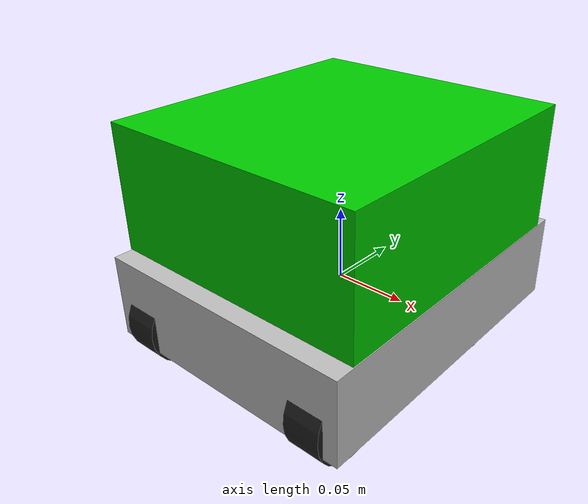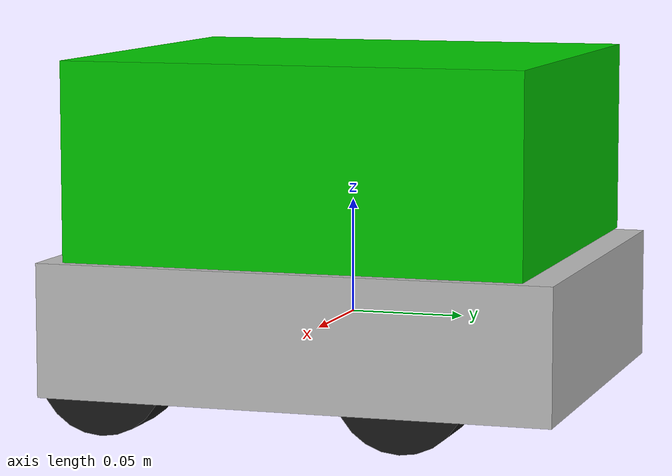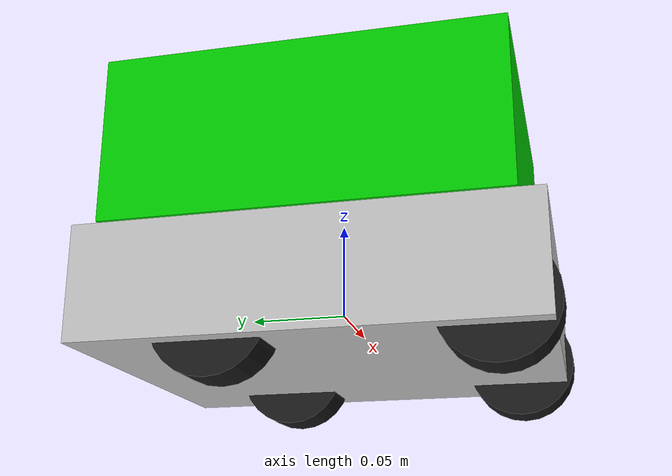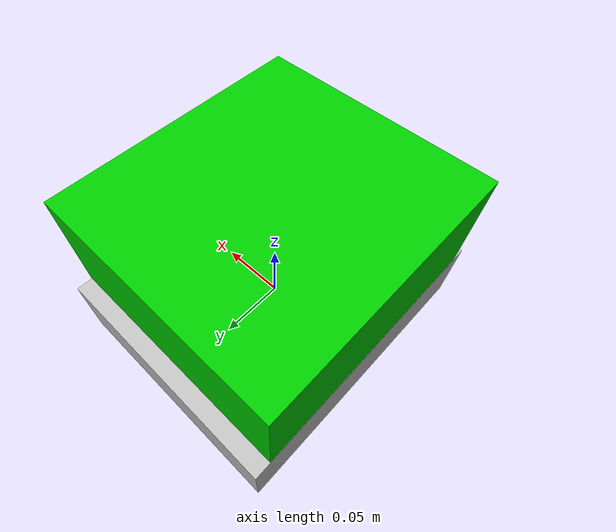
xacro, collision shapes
<?xml version="1.0"?>
<!--
  The complete jetduinobot library of xacros for easy reference
 -->
<robot xmlns:xacro="http://ros.org/wiki/xacro" name="jetduinobot">
  <!-- General -->
  <xacro:include filename="$(find jetduinobot_description)/urdf/common_properties.urdf.xacro"/>
  <xacro:include filename="$(find jetduinobot_description)/urdf/jetduinobot_properties.urdf.xacro"/>
  <!-- Bases -->
  <xacro:include filename="$(find jetduinobot_description)/urdf/dfrobot_4wd.urdf.xacro"/>
  <xacro:include filename="$(find jetduinobot_description)/urdf/jetduino.urdf.xacro"/>
  <!-- Stacks -->
  <!-- 3D Sensors -->
</robot>

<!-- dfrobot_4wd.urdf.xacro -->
<robot xmlns:xacro="http://ros.org/wiki/xacro">

  <xacro:property name="chassis_length" value="0.225" />
  <xacro:property name="chassis_width" value="0.185" />
  <xacro:property name="chassis_height" value="0.058" />
  <xacro:property name="chassis_mass" value="0.416" />

  <link name="world_link" />

  <link name="base_link">
    <visual>
      <geometry>
        <mesh filename="package://jetduinobot_description/meshes/chassis.dae" scale="0.1 0.1 0.1"/>
      </geometry>
      <origin rpy="0 0 0" xyz="0 -0.0075 -0.029"/>
      <xacro:insert_block name="material_silver" />
    </visual>
    <collision>
      <geometry>
        <box size="${chassis_width} ${chassis_length} ${chassis_height}"/>
      </geometry>
    </collision>
    <inertial>
      <mass value="${chassis_mass}"/>
      <inertia ixx="${0.0833 * chassis_mass * (chassis_height*chassis_height + chassis_length*chassis_length)}" ixy="0" ixz="0"
               iyy="${0.0833 * chassis_mass * (chassis_width*chassis_width + chassis_length*chassis_length)}" iyz="0"
               izz="${0.0833 * chassis_mass * (chassis_height*chassis_height + chassis_width*chassis_width)}" />
    </inertial>
  </link>

  <joint name="base_joint" type="fixed">
    <parent link="world_link"/>
    <child link="base_link"/>
    <origin rpy="0 0 0" xyz="0 0 0"/>
  </joint>

  <!-- battery -->
  <xacro:property name="battery_length" value="0.13" />
  <xacro:property name="battery_width" value="0.045" />
  <xacro:property name="battery_height" value="0.0025" />
  <xacro:property name="battery_mass" value="0.330" />

  <link name="battery_link">
    <visual>
      <geometry>
        <mesh filename="package://jetduinobot_description/meshes/battery_large/battery_large.dae"/>
      </geometry>
      <xacro:insert_block name="material_black" />
    </visual>
    <collision>
      <geometry>
        <box size="${battery_width} ${battery_length} ${battery_height}"/>
      </geometry>
    </collision>
    <inertial>
      <mass value="${battery_mass}"/>
      <inertia ixx="${0.0833 * battery_mass * (battery_height*battery_height + battery_length*battery_length)}" ixy="0" ixz="0"
               iyy="${0.0833 * battery_mass * (battery_width*battery_width + battery_length*battery_length)}" iyz="0"
               izz="${0.0833 * battery_mass * (battery_height*battery_height + battery_width*battery_width)}" />
    </inertial>
  </link>

  <joint name="batteryjoint" type="fixed">
    <parent link="base_link"/>
    <child link="battery_link"/>
    <origin rpy="0 0 1.5708" xyz="0 -0.02 0.015"/>
  </joint>

  <!-- wheels -->
  <xacro:property name="wheel_length" value="0.025" />
  <xacro:property name="wheel_radius" value="0.029" />
  <xacro:property name="wheel_mass" value="0.030" />
  <xacro:property name="wheel_separation" value="0.148" />

  <!-- rear wheels -->
  <!-- right rear wheel -->
  <link name="right_rear_wheel_link">
    <visual>
      <geometry>
        <mesh filename="package://jetduinobot_description/meshes/wheel/wheel.dae" scale="0.1 0.1 0.1"/>
      </geometry>
      <xacro:insert_block name="material_black" />
    </visual>
    <collision>
      <geometry>
        <cylinder length="${wheel_length}" radius="${wheel_radius}"/>
      </geometry>
    </collision>
    <inertial>
      <mass value="${wheel_mass}"/>
      <inertia ixx="${0.0833 * wheel_mass * (3*wheel_radius*wheel_radius + wheel_length*wheel_length)}" ixy="0" ixz="0"
               iyy="${0.0833 * wheel_mass * (3*wheel_radius*wheel_radius + wheel_length*wheel_length)}" iyz="0"
               izz="${0.0833 * wheel_mass * (3*wheel_radius*wheel_radius + wheel_length*wheel_length)}" />
    </inertial>
  </link>

  <joint name="right_rear_wheel_joint" type="continuous">
    <axis xyz="0 0 1"/>
    <parent link="base_link"/>
    <child link="right_rear_wheel_link"/>
    <origin rpy="0 -1.5708 0" xyz="-0.07 -0.0875 -0.017"/>
  </joint>

  <!-- left rear wheel -->
  <link name="left_rear_wheel_link">
    <visual>
      <geometry>
        <mesh filename="package://jetduinobot_description/meshes/wheel/wheel.dae" scale="0.1 0.1 0.1" />
      </geometry>
      <origin rpy="0 3.14159 0" xyz="0 0 0"/>
      <xacro:insert_block name="material_black" />
    </visual>
    <collision>
      <geometry>
        <cylinder length="${wheel_length}" radius="${wheel_radius}"/>
      </geometry>
    </collision>
    <inertial>
      <mass value="${wheel_mass}"/>
      <inertia ixx="${0.0833 * wheel_mass * (3*wheel_radius*wheel_radius + wheel_length*wheel_length)}" ixy="0" ixz="0"
               iyy="${0.0833 * wheel_mass * (3*wheel_radius*wheel_radius + wheel_length*wheel_length)}" iyz="0"
               izz="${0.0833 * wheel_mass * (3*wheel_radius*wheel_radius + wheel_length*wheel_length)}" />
    </inertial>
  </link>

  <joint name="left_rear_wheel_joint" type="continuous">
    <axis xyz="0 0 1"/>
    <parent link="base_link"/>
    <child link="left_rear_wheel_link"/>
    <origin rpy="0 -1.5708 0" xyz="0.07 -0.0875 -0.017"/>
  </joint>

  <!-- front wheels -->
  <!-- right front wheel -->
  <link name="right_front_wheel_link">
    <visual>
      <geometry>
        <mesh filename="package://jetduinobot_description/meshes/wheel/wheel.dae" scale="0.1 0.1 0.1"/>
      </geometry>
      <xacro:insert_block name="material_black" />
    </visual>
    <collision>
      <geometry>
        <cylinder length="${wheel_length}" radius="${wheel_radius}"/>
      </geometry>
    </collision>
    <inertial>
      <mass value="${wheel_mass}"/>
      <inertia ixx="${0.0833 * wheel_mass * (3*wheel_radius*wheel_radius + wheel_length*wheel_length)}" ixy="0" ixz="0"
               iyy="${0.0833 * wheel_mass * (3*wheel_radius*wheel_radius + wheel_length*wheel_length)}" iyz="0"
               izz="${0.0833 * wheel_mass * (3*wheel_radius*wheel_radius + wheel_length*wheel_length)}" />
    </inertial>
  </link>

  <joint name="right_front_wheel_joint" type="continuous">
    <axis xyz="0 0 1"/>
    <parent link="base_link"/>
    <child link="right_front_wheel_link"/>
    <origin rpy="0 -1.5708 0" xyz="-0.07 0.0455 -0.017"/>
  </joint>

  <!-- left front wheel -->
  <link name="left_front_wheel_link">
    <visual>
      <geometry>
        <mesh filename="package://jetduinobot_description/meshes/wheel/wheel.dae" scale="0.1 0.1 0.1"/>
      </geometry>
      <origin rpy="0 3.14159 0" xyz="0 0 0"/>
      <xacro:insert_block name="material_black" />
    </visual>
    <collision>
      <geometry>
        <cylinder length="${wheel_length}" radius="${wheel_radius}"/>
      </geometry>
    </collision>
    <inertial>
      <mass value="${wheel_mass}"/>
      <inertia ixx="${0.0833 * wheel_mass * (3*wheel_radius*wheel_radius + wheel_length*wheel_length)}" ixy="0" ixz="0"
               iyy="${0.0833 * wheel_mass * (3*wheel_radius*wheel_radius + wheel_length*wheel_length)}" iyz="0"
               izz="${0.0833 * wheel_mass * (3*wheel_radius*wheel_radius + wheel_length*wheel_length)}" />
    </inertial>
  </link>

  <joint name="left_front_wheel_joint" type="continuous">
    <axis xyz="0 0 1"/>
    <parent link="base_link"/>
    <child link="left_front_wheel_link"/>
    <origin rpy="0 -1.5708 0" xyz="0.07 0.0455 -0.017"/>
  </joint>

  <gazebo>
    <plugin name="joint_state_publisher" filename="libgazebo_ros_joint_state_publisher.so">
      <jointName>right_rear_wheel_joint, left_rear_wheel_joint, right_front_wheel_joint,
                 left_front_wheel_joint</jointName>
    </plugin>

    <plugin name="skid_steer_drive_controller" filename="libgazebo_ros_skid_steer_drive.so">
      <leftFrontJoint>left_front_wheel_joint</leftFrontJoint>
      <rightFrontJoint>right_front_wheel_joint</rightFrontJoint>
      <leftRearJoint>left_rear_wheel_joint</leftRearJoint>
      <rightRearJoint>right_rear_wheel_joint</rightRearJoint>
      <wheelSeparation>${wheel_separation}</wheelSeparation>
      <wheelDiameter>${2 * wheel_radius}</wheelDiameter>
      <robotBaseFrame>base_link</robotBaseFrame>
      <torque>20</torque>
    </plugin>
  </gazebo>

</robot>

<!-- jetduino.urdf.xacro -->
<robot xmlns:xacro="http://ros.org/wiki/xacro">

  <xacro:property name="jetduino_length" value="0.2" />
  <xacro:property name="jetduino_width" value="0.185" />
  <xacro:property name="jetduino_height" value="0.0855" />
  <xacro:property name="jetduino_mass" value="0.617" />

  <link name="jetduino_link">
    <visual>
      <geometry>
        <mesh filename="package://jetduinobot_description/meshes/jetduino_assembly/jetduino_assembly.dae" scale="0.1 0.1 0.1"/>
      </geometry>
      <origin rpy="0 0 0" xyz="0 0 -0.0375"/>
      <xacro:insert_block name="material_green" />
    </visual>
    <collision>
      <geometry>
        <box size="${jetduino_width} ${jetduino_length} ${jetduino_height}"/>
      </geometry>
    </collision>
    <inertial>
      <mass value="${jetduino_mass}"/>
      <inertia ixx="${0.0833 * jetduino_mass * (jetduino_height*jetduino_height + jetduino_length*jetduino_length)}" ixy="0" ixz="0"
               iyy="${0.0833 * jetduino_mass * (jetduino_width*jetduino_width + jetduino_length*jetduino_length)}" iyz="0"
               izz="${0.0833 * jetduino_mass * (jetduino_height*jetduino_height + jetduino_width*jetduino_width)}" />
    </inertial>
  </link>

  <joint name="jetduino_joint" type="fixed">
    <parent link="base_link"/>
    <child link="jetduino_link"/>
    <origin rpy="0 0 0" xyz="0 0 0.0725"/>
  </joint>

</robot>
